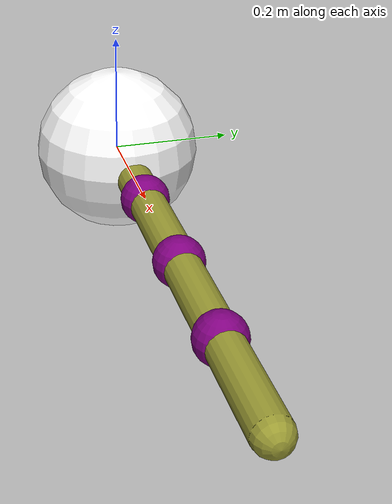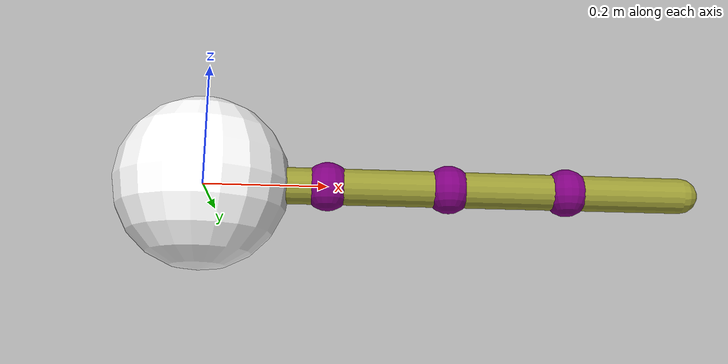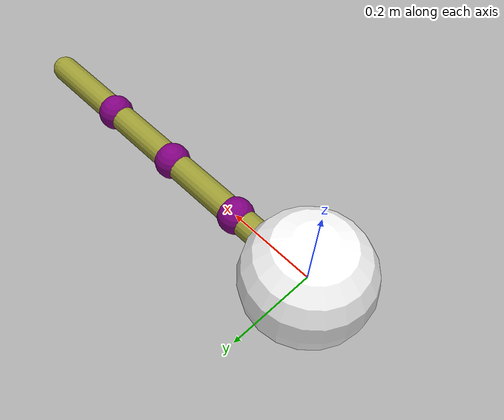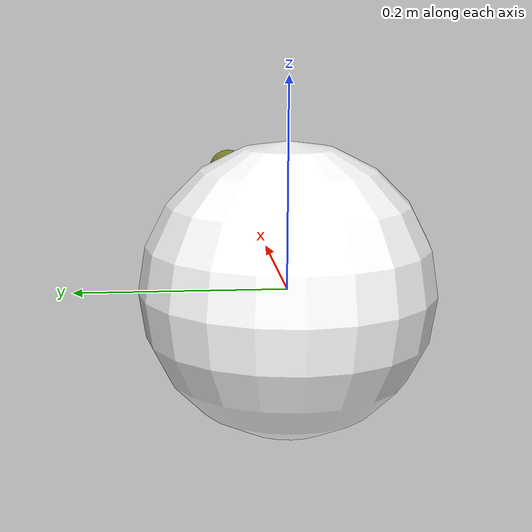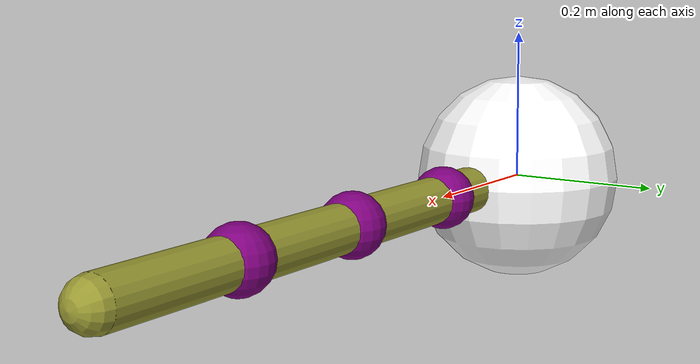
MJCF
<mujoco model='arm'>
    <!-- This file is going to make the structure of a moving_hand -->
	<compiler inertiafromgeom='true' angle='degree'/>
    <default>
        <joint limited='true' damping='1' armature='0'/>
        <geom contype='1' conaffinity='1' condim='1' rgba='0.5 0.3 .4 1'
        	margin="0.001" solref=".02 1" solimp=".8 .8 .01"/>
        <motor ctrlrange='-.4 .4' ctrllimited='true'/>
		<!-- add some classes -->
    </default>

    <option timestep='0.002' iterations="50" tolerance="1e-10" solver="Newton" jacobian="dense" cone="elliptic"/>

    <size nstack="1000000"/>

    <visual>
	<!-- the visual part, which is not very important -->
        <map fogstart="3" fogend="5" force="0.1" znear="0.5"/>
        <quality shadowsize="2048" offsamples="8"/>
        <global offwidth="800" offheight="800"/>
		<!-- the size of the scenary -->
    </visual>

    <asset>
        <!-- asset is the predefined setting -->
		<texture type="skybox" builtin="gradient" width="128" height="128" rgb1=".4 .6 .8"
            rgb2="0 0 0"/>
        <texture name="texgeom" type="cube" builtin="flat" mark="cross" width="127" height="1278"
            rgb1="0.4 0.4 0.1" rgb2="0.5 0.5 0.1" markrgb="1 1 1" random="0.01"/>
        <texture name="texplane" type="2d" builtin="checker" rgb1=".2 .3 .4" rgb2=".1 0.15 0.2"
            width="512" height="512"/>
		<!-- the material is a more complicated structure -->
        <material name='MatPlane' reflectance='0.3' texture="texplane" texrepeat="1 1" texuniform="true"/>
    </asset>

    <worldbody>
        <!--geom name='floor' pos='0 0 0' size='1.0 1.0 .125' type='plane' rgba='0 0 0 0' condim='3'-->
		<!-- the light is bounded on a body-->
        <light mode='targetbodycom' target='arm' directional='false' castshadow='false'  diffuse='.8 .8 .8' specular='0.3 0.3 0.3' pos='1 1 4.0' dir='0 0 -1'/>
		<!-- structure for the hand first -->
		<body name='arm' pos='0.0 0.0 0.0' axisangle='0 0 1 -90'>
		<joint name='slide1' type='slide' range='-0.8 -0.2' axis='0 1 0' />
			<geom type='sphere' size="0.04" rgba=".5 .0 .5 1"/>
			<body name='arm1' pos='0 0.1 0'>
				<geom type= 'capsule' size='0.03 0.1' quat="0 0 1 1" rgba=".6 .6 .2 1"/>
				<joint name='hinge1' type='hinge' pos='0 -0.1 0' range='-180 180'/>
				<geom type='sphere' pos='0 0.1 0' size="0.04" rgba=".5 .0 .5 1"/>
					<body name='arm2' pos='0 0.1 0'>
					<geom type= 'capsule' size='0.03 0.1' pos='0 0.1 0'  quat="0 0 1 1" rgba=".6 .6 .2 1"/>
					<joint name='hinge2' type='hinge' range='-180 180'/>
					<geom type='sphere' pos='0 0.2 0' size="0.04" rgba=".5 .0 .5 1"/>
						<body name='arm3' pos='0 0.2 0'>
						<geom type= 'capsule' size='0.03 0.1' pos='0 0.1 0'  quat="0 0 1 1" rgba=".6 .6 .2 1"/>
						<geom type='sphere' pos='0 0.2 0' size="0.04" rgba=".5 .0 .5 1"/>
						<joint name='hinge3' type='hinge' range='-180 180'/>
							<body name='arm4' pos='0 0.2 0'>
							<geom type= 'capsule' size='0.03 0.1' pos='0 0.1 0'  quat="0 0 1 1" rgba=".6 .6 .2 1"/>
							<joint name='hinge4' type='hinge' range='-180 180'/>
							</body>
						</body>
					</body>
			</body>
		</body>
		<body name='slidebar' pos='0.0 0 0'>
			<site name='button' type='sphere' size='0.1' rgba='1 1 1 1'/>
			<geom type='cylinder' size='0.05 0.05' rgba=".5 .5 .0 1"/>
			<joint name='b_slide1' type='slide' range='0.0 0.6' axis='1 0 0' />
			<joint name='b_slide2' type='slide' range='-0.3 0.3' axis='0 1 0' />
		</body>
		<!-- a coordinate around coordinate of size 0.15 -->

        <body name='obstacle' pos='0 0 0'>
		<!-- the obstacle can move among all of the area -->
            <inertial pos='0 0 0' mass='10000000' diaginertia='166.67 166.67 166.67' />
		    <geom name = 'safe_ball' type='sphere' rgba='1 1 1 1' size = '0.14'/>
		    <site name='safe_area' type='sphere' rgba='1 1 1 0' size='0.15'/>
			<joint name='safe_slide1' type='slide' range='-0.1 0.1' axis='1 0 0' />
			<joint name='safe_slide2' type='slide' range='-0.5 0.5' axis='0 1 0' />
        </body>

        <camera name="camera1" mode="fixed" pos="0 0 2.6" />
        <camera name="camera2" mode="fixed" pos="0 0.5 0" quat="0 0 1 1"/>
    </worldbody>
	<!-- body finished -->
	<sensor>
		<touch name='touch button' site='button'/>
		<touch name='safe_area' site='safe_area'/>
	</sensor>
	<!-- actuator -->
	<actuator>
    	<motor joint='slide1' name='slide1'  ctrlrange='-0.9 0.9'/>
    	<motor joint='hinge1' name='hinge1'  ctrlrange='-0.9 0.9'/>
    	<motor joint='hinge2' name='hinge2'  ctrlrange='-0.9 0.9'/>
    	<motor joint='hinge3' name='hinge3'  ctrlrange='-0.9 0.9'/>
    	<motor joint='hinge4' name='hinge4'  ctrlrange='-0.9 0.9'/>
    	<motor joint='safe_slide1' name='safe_slide1'  ctrlrange='-0.9 0.9'/>
    	<motor joint='safe_slide2' name='safe_slide2'  ctrlrange='-0.9 0.9'/>

	</actuator>

</mujoco>
